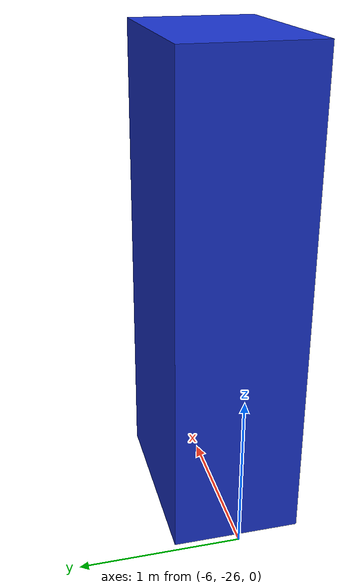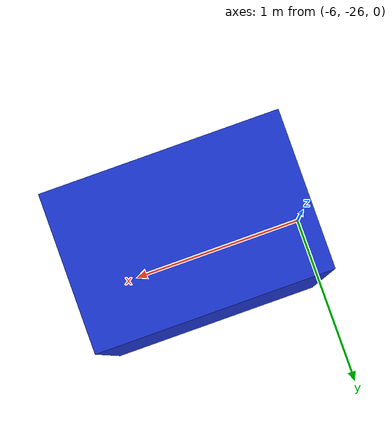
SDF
<?xml version="1.0"?>
<sdf version="1.9">
  <!-- Gazebo-only regression fixture: a static box protruding from the
       corridor's left (negative world-X) wall. Not a competition dimension. -->
  <model name="left_wall_protrusion">
    <static>true</static>
    <pose>-5.35 -26.0 1.5 0 0 0</pose>
    <link name="body">
      <collision name="collision">
        <geometry><box><size>1.2 0.8 3.0</size></box></geometry>
      </collision>
      <visual name="visual">
        <geometry><box><size>1.2 0.8 3.0</size></box></geometry>
        <material>
          <ambient>0.1 0.2 0.8 1</ambient>
          <diffuse>0.1 0.2 0.8 1</diffuse>
        </material>
      </visual>
    </link>
  </model>
</sdf>
